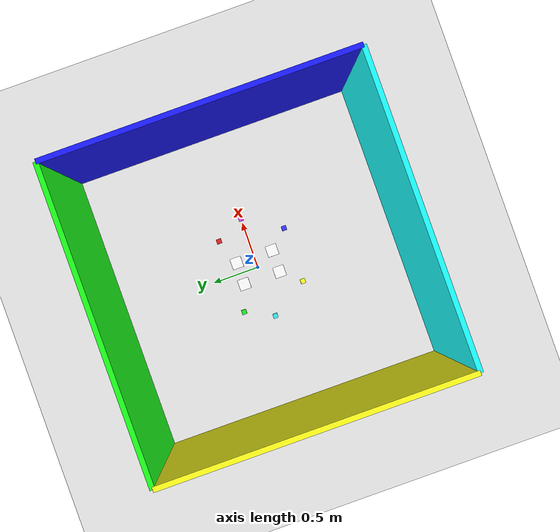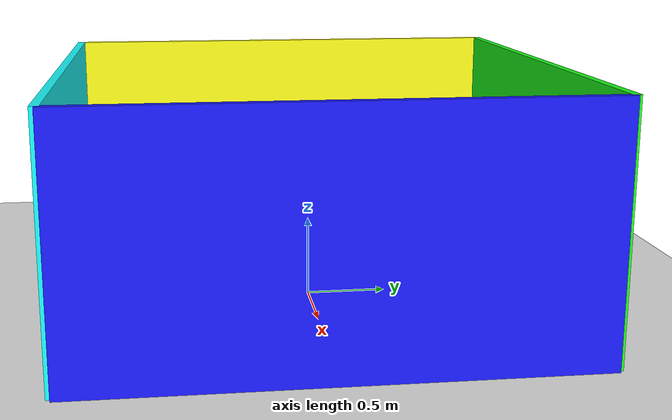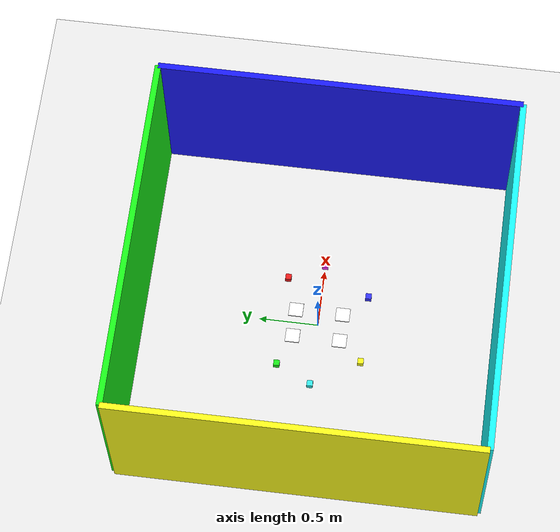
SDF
<?xml version="1.0" ?>
<sdf version="1.9">
  <world name="sentai_crazysim">
    <physics type="ode">
      <max_step_size>0.001</max_step_size>
      <real_time_factor>1.0</real_time_factor>
      <real_time_update_rate>1000</real_time_update_rate>
    </physics>
    <plugin name='gz::sim::systems::Physics' filename='libgz-sim-physics-system.so'/>
    <plugin name='gz::sim::systems::UserCommands' filename='libgz-sim-user-commands-system.so'/>
    <plugin name='gz::sim::systems::SceneBroadcaster' filename='libgz-sim-scene-broadcaster-system.so'/>
    <plugin name='gz::sim::systems::Contact' filename='libgz-sim-contact-system.so'/>
    <plugin name='gz::sim::systems::Imu' filename='libgz-sim-imu-system.so'/>
    <plugin name='gz::sim::systems::AirPressure' filename='libgz-sim-air-pressure-system.so'/>
    <plugin name='gz::sim::systems::Sensors' filename='libgz-sim-sensors-system.so'>
      <render_engine>ogre2</render_engine>
    </plugin>

    <!--  Wind disturbance — perturbs X/Y so we can see whether   -->
    <!--  flow stabilizes the drone (with bridge --send-flow) or  -->
    <!--  the drone drifts away (no flow source).                 -->
    <!--  Constant 0.5 m/s in +X world (~5 km/h, mild breeze).    -->
    <!--  WindEffects plugin applies this to any model with a     -->
    <!--  model.sdf.jinja so this actually pushes the drone).     -->
    <plugin filename="gz-sim-wind-effects-system" name="gz::sim::systems::WindEffects">
      <!-- NO WIND (s127 isolation test 2026-05-13: zero base + zero stochastic
           to determine if -X drift survives without atmospheric perturbation) -->
      <horizontal>
        <magnitude>
          <time_for_rise>2</time_for_rise>
          <sin>
            <amplitude_percent>0.0</amplitude_percent>
            <period>8</period>
          </sin>
          <noise type="gaussian"><mean>0</mean><stddev>0.0</stddev></noise>
        </magnitude>
        <direction>
          <time_for_rise>2</time_for_rise>
          <sin>
            <amplitude>0</amplitude>
            <period>15</period>
          </sin>
          <noise type="gaussian"><mean>0</mean><stddev>0.0</stddev></noise>
        </direction>
      </horizontal>
      <vertical>
        <noise type="gaussian"><mean>0</mean><stddev>0.0</stddev></noise>
      </vertical>
    </plugin>
    <wind>
      <linear_velocity>0 0 0</linear_velocity>
    </wind>

    <gravity>0 0 -9.80665</gravity>
    <magnetic_field>6e-06 2.3e-05 -4.2e-05</magnetic_field>
    <atmosphere type='adiabatic'/>

    <scene>
      <grid>false</grid>
      <background>1.0 0.1 0.1 1</background>
      <ambient>0.5 0.5 0.5 1</ambient>
      <background>0.7 0.85 1.0 1</background>
      <shadows>true</shadows>
    </scene>

    <!--  GROUND PLANE — checkerboard, 4x4 m, 5 cm squares     -->
    <!-- Drone hovers at ~1 m, cam FOV ~60° → footprint ~1.2x  -->
    <!-- 1.2 m on ground.  Squares of 5 cm (0.05 m) give ~24   -->
    <!-- visible per axis: dense feature texture, no aliasing. -->
    <!-- World scale 4x4 m so we see "infinite floor" in any   -->
    <!-- 1-2 m flight envelope.                                -->
    <model name="ground_plane">
      <static>true</static>
      <link name="link">
        <collision name="collision">
          <geometry>
            <plane>
              <normal>0 0 1</normal>
              <size>4 4</size>
            </plane>
          </geometry>
        </collision>
        <visual name="visual">
          <geometry>
            <plane>
              <normal>0 0 1</normal>
              <size>4 4</size>
            </plane>
          </geometry>
          <material>
            <diffuse>0.9 0.9 0.9 1</diffuse>
            <specular>0.5 0.5 0.5 1</specular>
            <pbr>
              <metal>
                <albedo_map>materials/textures/suburbs_bg.png</albedo_map>
              </metal>
            </pbr>
          </material>
        </visual>
      </link>
    </model>

    <model name="ground_plane_deep">
      <static>true</static>
      <pose>0 0 -10 0 0 0</pose>
      <link name="link">
        <visual name="visual">
          <geometry>
            <plane>
              <normal>0 0 1</normal>
              <size>40 40</size>
            </plane>
          </geometry>
          <material>
            <diffuse>1 1 1 1</diffuse>
            <pbr>
              <metal>
                <albedo_map>materials/textures/checker.png</albedo_map>
              </metal>
            </pbr>
          </material>
        </visual>
      </link>
    </model>

    <!--  TINY COLORED MARKERS — feature grid for optical flow -->
    <!-- Drone hovers at ~1 m above origin.  Markers are 5 cm  -->
    <!-- cubes within ±0.6 m of origin so they stay in-frame   -->
    <!-- the whole flight.  Tiny (5 cm) so they don't dominate -->
    <!-- the scene; checkerboard ground does most feature work,-->
    <!-- markers add color/landmark anchors.                   -->
    <model name="marker_red">
      <static>true</static>
      <pose>0.4 0.3 0.025 0 0 0</pose>
      <link name="link">
        <visual name="v"><geometry><box><size>0.05 0.05 0.05</size></box></geometry>
          <material><ambient>0.8 0.1 0.1 1</ambient><diffuse>0.9 0.1 0.1 1</diffuse></material></visual>
      </link>
    </model>
    <model name="marker_green">
      <static>true</static>
      <pose>-0.4 0.3 0.025 0 0 0</pose>
      <link name="link">
        <visual name="v"><geometry><box><size>0.05 0.05 0.05</size></box></geometry>
          <material><ambient>0.1 0.7 0.1 1</ambient><diffuse>0.1 0.9 0.1 1</diffuse></material></visual>
      </link>
    </model>
    <model name="marker_blue">
      <static>true</static>
      <pose>0.3 -0.4 0.025 0 0 0</pose>
      <link name="link">
        <visual name="v"><geometry><box><size>0.05 0.05 0.05</size></box></geometry>
          <material><ambient>0.1 0.1 0.8 1</ambient><diffuse>0.2 0.2 1.0 1</diffuse></material></visual>
      </link>
    </model>
    <model name="marker_yellow">
      <static>true</static>
      <pose>-0.3 -0.4 0.025 0 0 0</pose>
      <link name="link">
        <visual name="v"><geometry><box><size>0.05 0.05 0.05</size></box></geometry>
          <material><ambient>0.9 0.9 0.1 1</ambient><diffuse>1.0 1.0 0.1 1</diffuse></material></visual>
      </link>
    </model>
    <model name="marker_magenta">
      <static>true</static>
      <pose>0.55 0 0.025 0 0 0</pose>
      <link name="link">
        <visual name="v"><geometry><box><size>0.05 0.05 0.05</size></box></geometry>
          <material><ambient>0.8 0.2 0.8 1</ambient><diffuse>1.0 0.2 1.0 1</diffuse></material></visual>
      </link>
    </model>
    <model name="marker_cyan">
      <static>true</static>
      <pose>-0.55 0 0.025 0 0 0</pose>
      <link name="link">
        <visual name="v"><geometry><box><size>0.05 0.05 0.05</size></box></geometry>
          <material><ambient>0.1 0.7 0.7 1</ambient><diffuse>0.2 0.9 0.9 1</diffuse></material></visual>
      </link>
    </model>

    <model name="aruco_id0">
      <static>true</static>
      <pose>+0.12 +0.20 0.005  0 0 0</pose>
      <link name="link">
        <visual name="v">
          <!-- 0.12 m square face, 5 mm thick (top at z=0.005). -->
          <geometry><box><size>0.12 0.12 0.01</size></box></geometry>
          <material>
            <ambient>1 1 1 1</ambient><diffuse>1 1 1 1</diffuse>
            <pbr><metal>
              <albedo_map>materials/textures/aruco_4x4_50_id0.png</albedo_map>
              <metalness>0</metalness><roughness>1</roughness>
            </metal></pbr>
          </material>
        </visual>
      </link>
    </model>
    <model name="aruco_id1">
      <static>true</static>
      <pose>-0.12 +0.20 0.005  0 0 0</pose>
      <link name="link">
        <visual name="v">
          <geometry><box><size>0.12 0.12 0.01</size></box></geometry>
          <material>
            <ambient>1 1 1 1</ambient><diffuse>1 1 1 1</diffuse>
            <pbr><metal>
              <albedo_map>materials/textures/aruco_4x4_50_id1.png</albedo_map>
              <metalness>0</metalness><roughness>1</roughness>
            </metal></pbr>
          </material>
        </visual>
      </link>
    </model>
    <model name="aruco_id2">
      <static>true</static>
      <pose>-0.12 -0.20 0.005  0 0 0</pose>
      <link name="link">
        <visual name="v">
          <geometry><box><size>0.12 0.12 0.01</size></box></geometry>
          <material>
            <ambient>1 1 1 1</ambient><diffuse>1 1 1 1</diffuse>
            <pbr><metal>
              <albedo_map>materials/textures/aruco_4x4_50_id2.png</albedo_map>
              <metalness>0</metalness><roughness>1</roughness>
            </metal></pbr>
          </material>
        </visual>
      </link>
    </model>
    <model name="aruco_id3">
      <static>true</static>
      <pose>+0.12 -0.20 0.005  0 0 0</pose>
      <link name="link">
        <visual name="v">
          <geometry><box><size>0.12 0.12 0.01</size></box></geometry>
          <material>
            <ambient>1 1 1 1</ambient><diffuse>1 1 1 1</diffuse>
            <pbr><metal>
              <albedo_map>materials/textures/aruco_4x4_50_id3.png</albedo_map>
              <metalness>0</metalness><roughness>1</roughness>
            </metal></pbr>
          </material>
        </visual>
      </link>
    </model>

    <!--  Fixed downward-facing camera at z=1.5m looking down  -->
    <!--  (proxy for "what the drone sees at 1m hover" since   -->
    <!--   attaching camera to imported model is fragile in    -->
    <!--   Gazebo Garden).  Drone hovers at z=1m, so it appears -->
    <!--   in the cadru when in flight.                         -->
    <!-- (no camera model here — see model.sdf.jinja sensor "downward_cam") -->

    <!--  4 walls around the arena (3 m × 3 m × 1.5 m tall)        -->
    <!--  Reason: when the drone tilts during X/Y drift the camera   -->
    <!--  catches the wall edges, which gives phase-correlation a    -->
    <!--  reliable feature even at low altitude.  Walls are coloured -->
    <!--  uniquely (north=blue, south=yellow, east=green, west=cyan) -->
    <!--  so the operator can tell orientation from the PiP.         -->
    <model name="wall_north">
      <static>true</static><pose>1.5 0 0.75 0 0 0</pose>
      <link name="link"><visual name="v"><geometry><box><size>0.05 3.0 1.5</size></box></geometry>
        <material><ambient>0 0 0.6 1</ambient><diffuse>0.1 0.1 1 1</diffuse></material></visual>
        <collision name="c"><geometry><box><size>0.05 3.0 1.5</size></box></geometry></collision></link>
    </model>
    <model name="wall_south">
      <static>true</static><pose>-1.5 0 0.75 0 0 0</pose>
      <link name="link"><visual name="v"><geometry><box><size>0.05 3.0 1.5</size></box></geometry>
        <material><ambient>0.6 0.6 0 1</ambient><diffuse>1 1 0.1 1</diffuse></material></visual>
        <collision name="c"><geometry><box><size>0.05 3.0 1.5</size></box></geometry></collision></link>
    </model>
    <model name="wall_east">
      <static>true</static><pose>0 1.5 0.75 0 0 0</pose>
      <link name="link"><visual name="v"><geometry><box><size>3.0 0.05 1.5</size></box></geometry>
        <material><ambient>0 0.6 0 1</ambient><diffuse>0.1 1 0.1 1</diffuse></material></visual>
        <collision name="c"><geometry><box><size>3.0 0.05 1.5</size></box></geometry></collision></link>
    </model>
    <model name="wall_west">
      <static>true</static><pose>0 -1.5 0.75 0 0 0</pose>
      <link name="link"><visual name="v"><geometry><box><size>3.0 0.05 1.5</size></box></geometry>
        <material><ambient>0 0.6 0.6 1</ambient><diffuse>0.1 1 1 1</diffuse></material></visual>
        <collision name="c"><geometry><box><size>3.0 0.05 1.5</size></box></geometry></collision></link>
    </model>

    <!--  Sun + sky lights      -->
    <light type="directional" name="sun">
      <cast_shadows>true</cast_shadows>
      <pose>0 0 10 0 0 0</pose>
      <diffuse>0.95 0.95 0.95 1</diffuse>
      <specular>0.3 0.3 0.3 1</specular>
      <attenuation>
        <range>1000</range>
        <constant>0.9</constant>
        <linear>0.01</linear>
        <quadratic>0.001</quadratic>
      </attenuation>
      <direction>-0.3 0.2 -0.9</direction>
    </light>
  </world>
</sdf>
